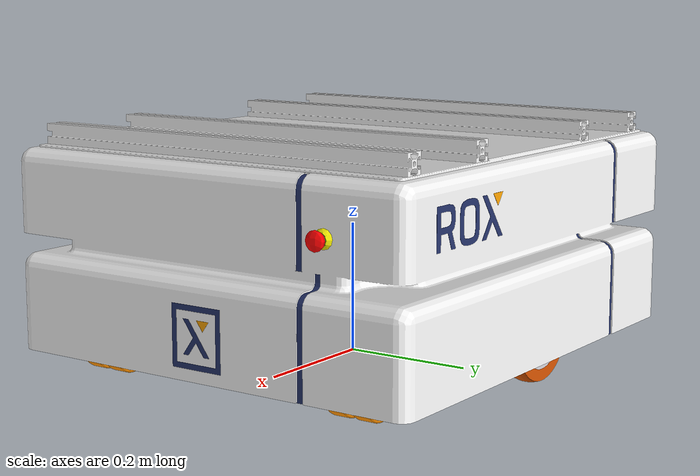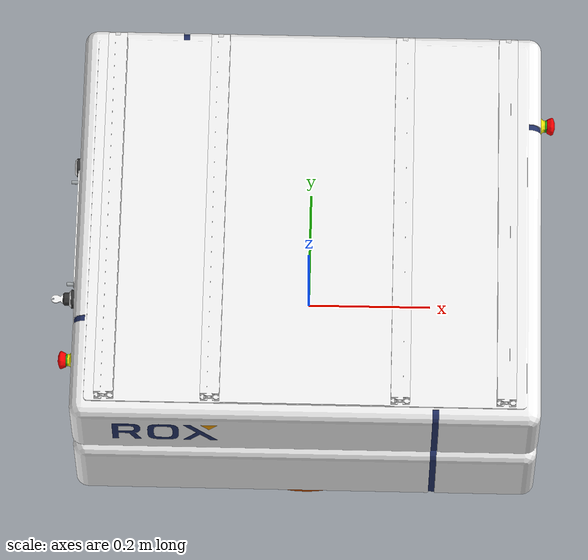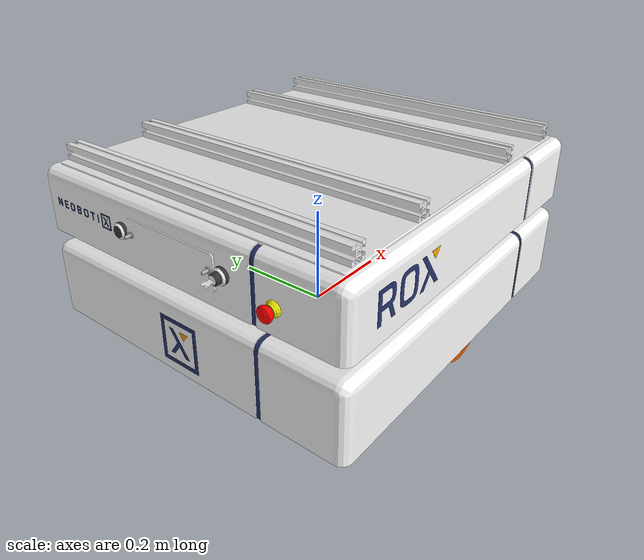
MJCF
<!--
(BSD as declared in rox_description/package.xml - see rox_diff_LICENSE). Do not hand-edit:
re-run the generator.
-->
<mujoco model="rox_diff">
  <compiler angle="radian" meshdir="meshes" autolimits="true"/>

  <default>
    <default class="rox_diff">
      <default class="visual">
        <geom type="mesh" contype="0" conaffinity="0" group="2"/>
      </default>
      <default class="collision">
        <geom type="mesh" group="3" rgba="0.6 0.1 0.1 0.35"/>
      </default>
      <default class="wheel_collision">
        <!-- Driven tyres: this base moves because these push on the ground. -->
        <geom type="sphere" group="3" rgba="0.05 0.05 0.05 0.4" friction="1.0 0.005 0.0001"/>
      </default>
      <default class="caster_collision">
        <geom type="sphere" group="3" rgba="0.6 0.1 0.1 0.35"
              friction="0.01 0.005 0.0001" priority="2"/>
      </default>
      <default class="wheel">
        <!-- The description's own axis, +y in the base frame: its joint carries no rotation. -->
        <joint axis="0 1 0" damping="0.5" armature="0.02" limited="false"/>
      </default>
    </default>
  </default>

  <asset>
    <material name="diff_caster__m0_mat" rgba="0.4118 0.4118 0.4118 1"/>
    <material name="diff_caster__m1_mat" rgba="1 0.5686 0 1"/>
    <material name="diff_caster__m2_mat" rgba="0.749 0.749 0.749 1"/>
    <material name="diff_wheel__m0_mat" rgba="0.8118 0.3098 0 1"/>
    <material name="diff_wheel__m1_mat" rgba="0.898 0.898 0.898 1"/>
    <material name="diff_wheel__m2_mat" rgba="0.8118 0.8 0.8235 1"/>
    <material name="short_frame__m0_mat" rgba="0.1333 0.1882 0.4 1"/>
    <material name="short_frame__m10_mat" rgba="0.4118 0.4118 0.4118 1"/>
    <material name="short_frame__m2_mat" rgba="0.9608 0.9608 0.9608 1"/>
    <material name="short_frame__m3_mat" rgba="0.9608 0.6196 0 1"/>
    <material name="short_frame__m4_mat" rgba="1 0 0 1"/>
    <material name="short_frame__m5_mat" rgba="0.9451 0.9137 0.0118 1"/>
    <material name="short_frame__m6_mat" rgba="0.149 0.6549 0.0588 1"/>
    <material name="short_frame__m7_mat" rgba="0.651 0.6745 0.6863 1"/>
    <material name="short_frame__m8_mat" rgba="0.9569 0.9569 0.9569 1"/>
    <material name="short_frame__m9_mat" rgba="0.2 0.2 0.2 1"/>
    <mesh file="diff_caster__m0.obj" scale="0.001 0.001 0.001" inertia="shell"/>
    <mesh file="diff_caster__m1.obj" scale="0.001 0.001 0.001" inertia="shell"/>
    <mesh file="diff_caster__m2.obj" scale="0.001 0.001 0.001" inertia="shell"/>
    <mesh file="diff_wheel__m0.obj" scale="0.001 0.001 0.001" inertia="shell"/>
    <mesh file="diff_wheel__m1.obj" scale="0.001 0.001 0.001" inertia="shell"/>
    <mesh file="diff_wheel__m2.obj" scale="0.001 0.001 0.001" inertia="shell"/>
    <mesh file="rox_diff_base_collision.obj" scale="1 1 1" inertia="shell"/>
    <mesh file="short_frame__m0.obj" scale="0.1 0.1 0.1" inertia="shell"/>
    <mesh file="short_frame__m10.obj" scale="0.1 0.1 0.1" inertia="shell"/>
    <mesh file="short_frame__m2.obj" scale="0.1 0.1 0.1" inertia="shell"/>
    <mesh file="short_frame__m3.obj" scale="0.1 0.1 0.1" inertia="shell"/>
    <mesh file="short_frame__m4.obj" scale="0.1 0.1 0.1" inertia="shell"/>
    <mesh file="short_frame__m5.obj" scale="0.1 0.1 0.1" inertia="shell"/>
    <mesh file="short_frame__m6.obj" scale="0.1 0.1 0.1" inertia="shell"/>
    <mesh file="short_frame__m7.obj" scale="0.1 0.1 0.1" inertia="shell"/>
    <mesh file="short_frame__m8.obj" scale="0.1 0.1 0.1" inertia="shell"/>
    <mesh file="short_frame__m9.obj" scale="0.1 0.1 0.1" inertia="shell"/>
  </asset>

  <contact>
    <!--
      The vendor's base collision IS the full body mesh, and MuJoCo convex-hulls a collision mesh, so
      the hull closes over the wheel and caster pockets and overlaps what sits inside them.
    -->
    <exclude body1="base_link" body2="wheel_left_link"/>
    <exclude body1="base_link" body2="wheel_right_link"/>
    <exclude body1="base_link" body2="caster_wheel_front_left_link"/>
    <exclude body1="base_link" body2="caster_wheel_front_right_link"/>
    <exclude body1="base_link" body2="caster_wheel_back_left_link"/>
    <exclude body1="base_link" body2="caster_wheel_back_right_link"/>
  </contact>

  <worldbody>
    <body name="base_link" childclass="rox_diff">
      <freejoint name="base_free"/>
      <inertial pos="0.0 0 0.18" mass="140.0" diaginertia="7.8 7.8 7.8"/>
      <site name="base_imu" pos="0 0 0" size="0.01" rgba="0 0 0 0"/>
        <geom class="visual" mesh="short_frame__m0" material="short_frame__m0_mat" pos="0.0 0.0 0.0"/>
        <geom class="visual" mesh="short_frame__m10" material="short_frame__m10_mat" pos="0.0 0.0 0.0"/>
        <geom class="visual" mesh="short_frame__m2" material="short_frame__m2_mat" pos="0.0 0.0 0.0"/>
        <geom class="visual" mesh="short_frame__m3" material="short_frame__m3_mat" pos="0.0 0.0 0.0"/>
        <geom class="visual" mesh="short_frame__m4" material="short_frame__m4_mat" pos="0.0 0.0 0.0"/>
        <geom class="visual" mesh="short_frame__m5" material="short_frame__m5_mat" pos="0.0 0.0 0.0"/>
        <geom class="visual" mesh="short_frame__m6" material="short_frame__m6_mat" pos="0.0 0.0 0.0"/>
        <geom class="visual" mesh="short_frame__m7" material="short_frame__m7_mat" pos="0.0 0.0 0.0"/>
        <geom class="visual" mesh="short_frame__m8" material="short_frame__m8_mat" pos="0.0 0.0 0.0"/>
        <geom class="visual" mesh="short_frame__m9" material="short_frame__m9_mat" pos="0.0 0.0 0.0"/>
        <geom class="collision" mesh="rox_diff_base_collision" name="base_footprint_collision" pos="0.0 0.0 0.0"/>
        <body name="caster_wheel_front_left_link" pos="0.2495 0.220 0.124">
          <inertial pos="0 0 0" mass="1.4" diaginertia="0.002 0.002 0.002"/>
          <geom class="visual" mesh="diff_caster__m0" material="diff_caster__m0_mat" pos="0 0 0" quat="0.5 -0.5 -0.5 0.5"/>
          <geom class="visual" mesh="diff_caster__m1" material="diff_caster__m1_mat" pos="0 0 0" quat="0.5 -0.5 -0.5 0.5"/>
          <geom class="visual" mesh="diff_caster__m2" material="diff_caster__m2_mat" pos="0 0 0" quat="0.5 -0.5 -0.5 0.5"/>
          <geom class="caster_collision" name="caster_wheel_front_left_link_tyre" size="0.035" pos="0.045 0 -0.089"/>
        </body>
        <body name="caster_wheel_front_right_link" pos="0.2495 -0.220 0.124">
          <inertial pos="0 0 0" mass="1.4" diaginertia="0.002 0.002 0.002"/>
          <geom class="visual" mesh="diff_caster__m0" material="diff_caster__m0_mat" pos="0 0 0" quat="0.5 -0.5 -0.5 0.5"/>
          <geom class="visual" mesh="diff_caster__m1" material="diff_caster__m1_mat" pos="0 0 0" quat="0.5 -0.5 -0.5 0.5"/>
          <geom class="visual" mesh="diff_caster__m2" material="diff_caster__m2_mat" pos="0 0 0" quat="0.5 -0.5 -0.5 0.5"/>
          <geom class="caster_collision" name="caster_wheel_front_right_link_tyre" size="0.035" pos="0.045 0 -0.089"/>
        </body>
        <body name="caster_wheel_back_left_link" pos="-0.1595 0.220 0.124">
          <inertial pos="0 0 0" mass="1.4" diaginertia="0.002 0.002 0.002"/>
          <geom class="visual" mesh="diff_caster__m0" material="diff_caster__m0_mat" pos="0 0 0" quat="0.5 -0.5 -0.5 0.5"/>
          <geom class="visual" mesh="diff_caster__m1" material="diff_caster__m1_mat" pos="0 0 0" quat="0.5 -0.5 -0.5 0.5"/>
          <geom class="visual" mesh="diff_caster__m2" material="diff_caster__m2_mat" pos="0 0 0" quat="0.5 -0.5 -0.5 0.5"/>
          <geom class="caster_collision" name="caster_wheel_back_left_link_tyre" size="0.035" pos="0.045 0 -0.089"/>
        </body>
        <body name="caster_wheel_back_right_link" pos="-0.1595 -0.220 0.124">
          <inertial pos="0 0 0" mass="1.4" diaginertia="0.002 0.002 0.002"/>
          <geom class="visual" mesh="diff_caster__m0" material="diff_caster__m0_mat" pos="0 0 0" quat="0.5 -0.5 -0.5 0.5"/>
          <geom class="visual" mesh="diff_caster__m1" material="diff_caster__m1_mat" pos="0 0 0" quat="0.5 -0.5 -0.5 0.5"/>
          <geom class="visual" mesh="diff_caster__m2" material="diff_caster__m2_mat" pos="0 0 0" quat="0.5 -0.5 -0.5 0.5"/>
          <geom class="caster_collision" name="caster_wheel_back_right_link_tyre" size="0.035" pos="0.045 0 -0.089"/>
        </body>
        <body name="wheel_left_link" pos="0.0 0.317 0.075">
          <inertial pos="0 0 0" mass="5.0" diaginertia="0.02888 0.02888 0.05625"/>
          <joint name="wheel_left_joint" class="wheel"/>
            <geom class="visual" mesh="diff_wheel__m0" material="diff_wheel__m0_mat" pos="0 0 0" quat="0.7071068 0.7071068 0 0"/>
            <geom class="visual" mesh="diff_wheel__m1" material="diff_wheel__m1_mat" pos="0 0 0" quat="0.7071068 0.7071068 0 0"/>
            <geom class="visual" mesh="diff_wheel__m2" material="diff_wheel__m2_mat" pos="0 0 0" quat="0.7071068 0.7071068 0 0"/>
            <geom class="wheel_collision" name="wheel_left_link_tyre" size="0.075" pos="0 0 0"/>
        </body>
        <body name="wheel_right_link" pos="0.0 -0.317 0.075">
          <inertial pos="0 0 0" mass="5.0" diaginertia="0.02888 0.02888 0.05625"/>
          <joint name="wheel_right_joint" class="wheel"/>
            <geom class="visual" mesh="diff_wheel__m0" material="diff_wheel__m0_mat" pos="0 0 0" quat="0.7071068 0.7071068 0 0"/>
            <geom class="visual" mesh="diff_wheel__m1" material="diff_wheel__m1_mat" pos="0 0 0" quat="0.7071068 0.7071068 0 0"/>
            <geom class="visual" mesh="diff_wheel__m2" material="diff_wheel__m2_mat" pos="0 0 0" quat="0.7071068 0.7071068 0 0"/>
            <geom class="wheel_collision" name="wheel_right_link_tyre" size="0.075" pos="0 0 0"/>
        </body>
    </body>
  </worldbody>

  <actuator>
    <velocity name="wheel_left_motor" joint="wheel_left_joint" kv="220" ctrlrange="-14 14" forcerange="-120 120"/>
    <velocity name="wheel_right_motor" joint="wheel_right_joint" kv="220" ctrlrange="-14 14" forcerange="-120 120"/>
  </actuator>

  <keyframe>
    <key name="home" qpos="0 0 0 1 0 0 0  0 0"/>
  </keyframe>
</mujoco>
